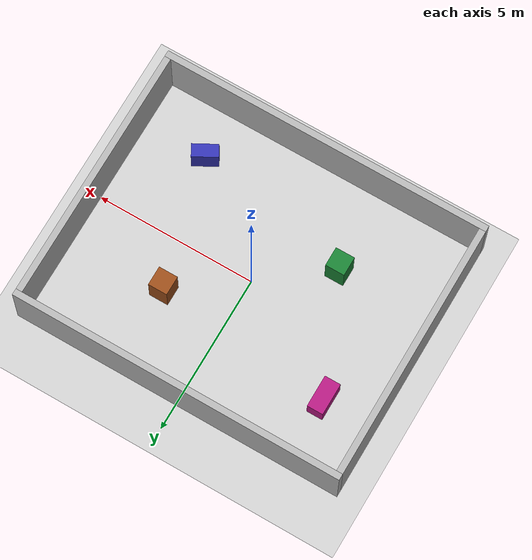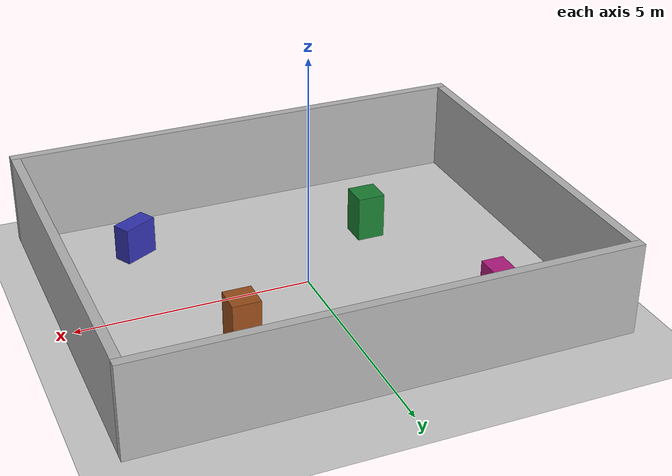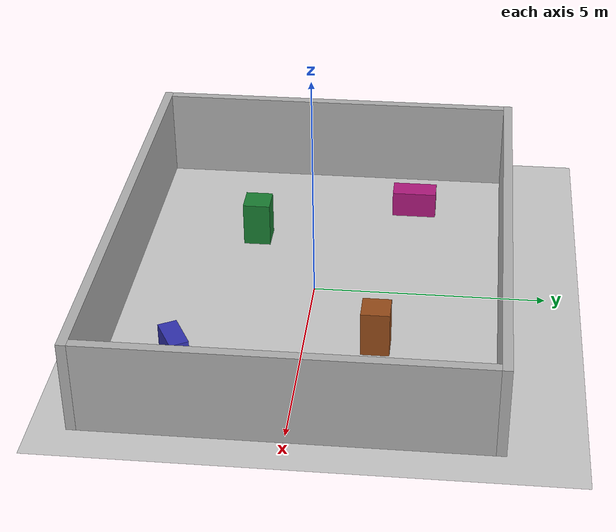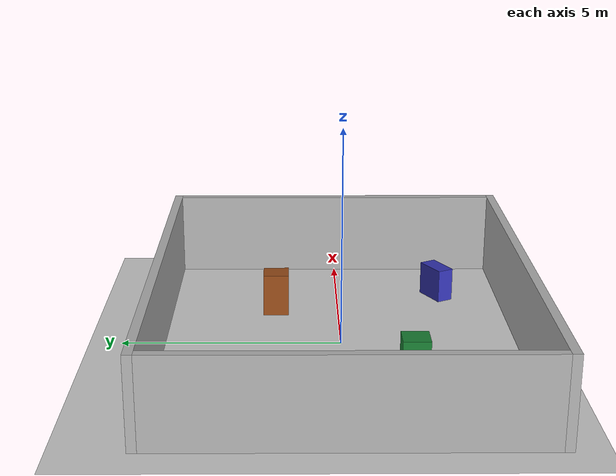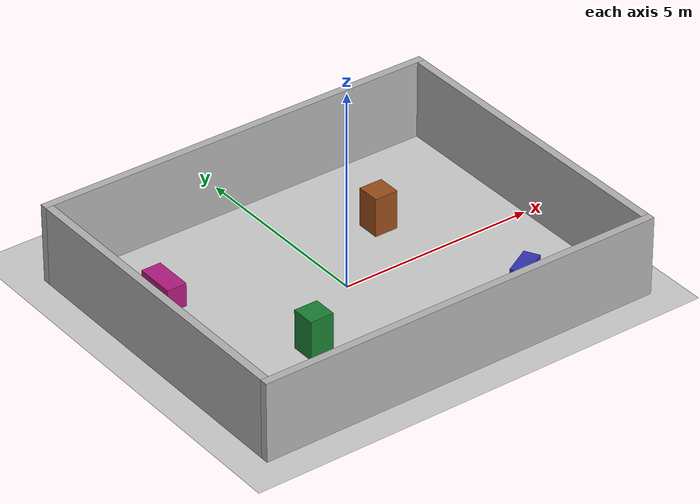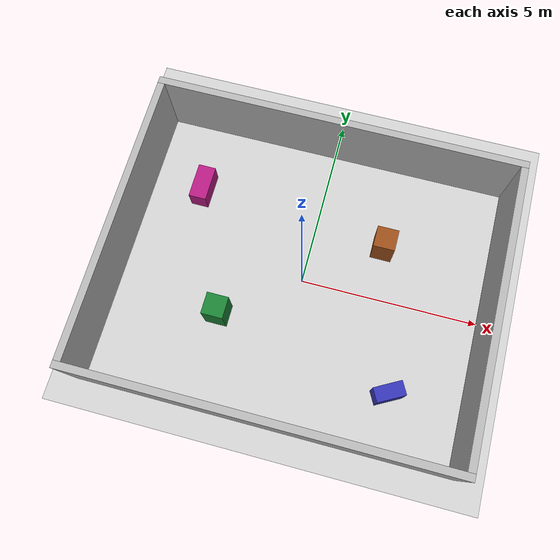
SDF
<?xml version="1.0" ?>
<!--
  Ignition Gazebo (Fortress) SDF world
  Rectangular room 10 m × 8 m, walls 0.2 m thick × 2 m high
  Four box obstacles inside the room
-->
<sdf version="1.8">
  <world name="rectangle_room">

    <!-- ── Physics ── -->
    <physics name="1ms" type="ignored">
      <max_step_size>0.001</max_step_size>
      <real_time_factor>1.0</real_time_factor>
      <real_time_update_rate>1000</real_time_update_rate>
    </physics>

    <!-- ── Required Ignition plugins ── -->
    <plugin
      filename="libignition-gazebo-physics-system.so"
      name="ignition::gazebo::systems::Physics"/>
    <plugin
      filename="libignition-gazebo-user-commands-system.so"
      name="ignition::gazebo::systems::UserCommands"/>
    <plugin
      filename="libignition-gazebo-scene-broadcaster-system.so"
      name="ignition::gazebo::systems::SceneBroadcaster"/>
    <plugin
      filename="libignition-gazebo-sensors-system.so"
      name="ignition::gazebo::systems::Sensors">
      <render_engine>ogre2</render_engine>
    </plugin>
    <plugin
      filename="libignition-gazebo-imu-system.so"
      name="ignition::gazebo::systems::Imu"/>

    <!-- ── Sun light ── -->
    <light type="directional" name="sun">
      <cast_shadows>true</cast_shadows>
      <pose>0 0 10 0 0 0</pose>
      <diffuse>0.8 0.8 0.8 1</diffuse>
      <specular>0.2 0.2 0.2 1</specular>
      <attenuation>
        <range>1000</range>
        <constant>0.9</constant>
        <linear>0.01</linear>
        <quadratic>0.001</quadratic>
      </attenuation>
      <direction>-0.5 0.1 -0.9</direction>
    </light>

    <!-- ── Ground plane ── -->
    <model name="ground_plane">
      <static>true</static>
      <link name="link">
        <collision name="collision">
          <geometry>
            <plane>
              <normal>0 0 1</normal>
              <size>20 20</size>
            </plane>
          </geometry>
          <surface>
            <friction>
              <ode><mu>100</mu><mu2>50</mu2></ode>
            </friction>
          </surface>
        </collision>
        <visual name="visual">
          <geometry>
            <plane>
              <normal>0 0 1</normal>
              <size>20 20</size>
            </plane>
          </geometry>
          <material>
            <ambient>0.8 0.8 0.8 1</ambient>
            <diffuse>0.8 0.8 0.8 1</diffuse>
          </material>
        </visual>
      </link>
    </model>

    <!-- ════════════════════════
         Room walls  (10 m × 8 m)
         wall thickness = 0.2 m, height = 2.0 m
         ════════════════════════ -->

    <!-- North wall  (y = +4.0) -->
    <model name="wall_north">
      <static>true</static>
      <pose>0 4.1 1.0 0 0 0</pose>
      <link name="link">
        <collision name="collision">
          <geometry><box><size>10.4 0.2 2.0</size></box></geometry>
        </collision>
        <visual name="visual">
          <geometry><box><size>10.4 0.2 2.0</size></box></geometry>
          <material>
            <ambient>0.7 0.7 0.7 1</ambient>
            <diffuse>0.7 0.7 0.7 1</diffuse>
          </material>
        </visual>
      </link>
    </model>

    <!-- South wall  (y = -4.0) -->
    <model name="wall_south">
      <static>true</static>
      <pose>0 -4.1 1.0 0 0 0</pose>
      <link name="link">
        <collision name="collision">
          <geometry><box><size>10.4 0.2 2.0</size></box></geometry>
        </collision>
        <visual name="visual">
          <geometry><box><size>10.4 0.2 2.0</size></box></geometry>
          <material>
            <ambient>0.7 0.7 0.7 1</ambient>
            <diffuse>0.7 0.7 0.7 1</diffuse>
          </material>
        </visual>
      </link>
    </model>

    <!-- East wall  (x = +5.0) -->
    <model name="wall_east">
      <static>true</static>
      <pose>5.1 0 1.0 0 0 0</pose>
      <link name="link">
        <collision name="collision">
          <geometry><box><size>0.2 8.0 2.0</size></box></geometry>
        </collision>
        <visual name="visual">
          <geometry><box><size>0.2 8.0 2.0</size></box></geometry>
          <material>
            <ambient>0.7 0.7 0.7 1</ambient>
            <diffuse>0.7 0.7 0.7 1</diffuse>
          </material>
        </visual>
      </link>
    </model>

    <!-- West wall  (x = -5.0) -->
    <model name="wall_west">
      <static>true</static>
      <pose>-5.1 0 1.0 0 0 0</pose>
      <link name="link">
        <collision name="collision">
          <geometry><box><size>0.2 8.0 2.0</size></box></geometry>
        </collision>
        <visual name="visual">
          <geometry><box><size>0.2 8.0 2.0</size></box></geometry>
          <material>
            <ambient>0.7 0.7 0.7 1</ambient>
            <diffuse>0.7 0.7 0.7 1</diffuse>
          </material>
        </visual>
      </link>
    </model>

    <!-- ════════════════
         Interior obstacles
         ════════════════ -->

    <model name="box_obstacle_1">
      <static>true</static>
      <pose>2.0 1.5 0.5 0 0 0</pose>
      <link name="link">
        <collision name="collision">
          <geometry><box><size>0.6 0.6 1.0</size></box></geometry>
        </collision>
        <visual name="visual">
          <geometry><box><size>0.6 0.6 1.0</size></box></geometry>
          <material>
            <ambient>0.6 0.3 0.1 1</ambient>
            <diffuse>0.6 0.3 0.1 1</diffuse>
          </material>
        </visual>
      </link>
    </model>

    <model name="box_obstacle_2">
      <static>true</static>
      <pose>-2.0 -1.5 0.5 0 0 0</pose>
      <link name="link">
        <collision name="collision">
          <geometry><box><size>0.6 0.6 1.0</size></box></geometry>
        </collision>
        <visual name="visual">
          <geometry><box><size>0.6 0.6 1.0</size></box></geometry>
          <material>
            <ambient>0.1 0.5 0.2 1</ambient>
            <diffuse>0.1 0.5 0.2 1</diffuse>
          </material>
        </visual>
      </link>
    </model>

    <model name="box_obstacle_3">
      <static>true</static>
      <pose>3.0 -2.5 0.4 0 0 0.5</pose>
      <link name="link">
        <collision name="collision">
          <geometry><box><size>0.8 0.4 0.8</size></box></geometry>
        </collision>
        <visual name="visual">
          <geometry><box><size>0.8 0.4 0.8</size></box></geometry>
          <material>
            <ambient>0.2 0.2 0.7 1</ambient>
            <diffuse>0.2 0.2 0.7 1</diffuse>
          </material>
        </visual>
      </link>
    </model>

    <model name="box_obstacle_4">
      <static>true</static>
      <pose>-3.5 2.0 0.3 0 0 0</pose>
      <link name="link">
        <collision name="collision">
          <geometry><box><size>0.5 1.0 0.6</size></box></geometry>
        </collision>
        <visual name="visual">
          <geometry><box><size>0.5 1.0 0.6</size></box></geometry>
          <material>
            <ambient>0.7 0.1 0.5 1</ambient>
            <diffuse>0.7 0.1 0.5 1</diffuse>
          </material>
        </visual>
      </link>
    </model>

  </world>
</sdf>
